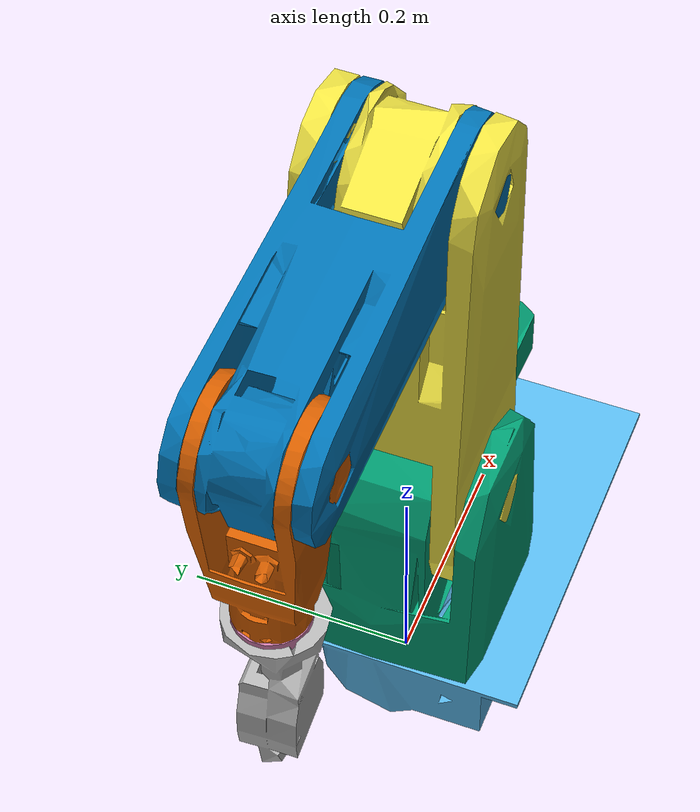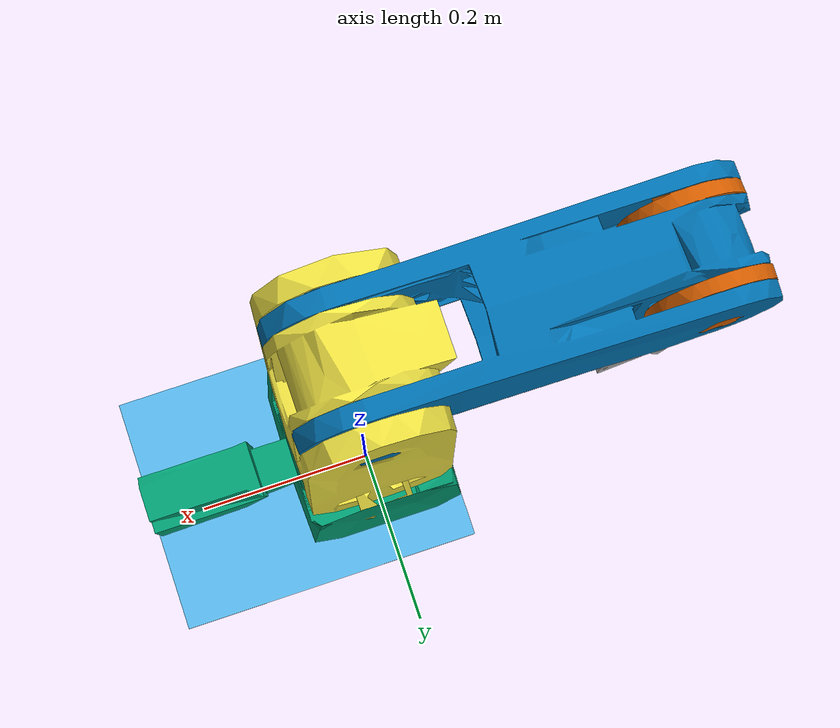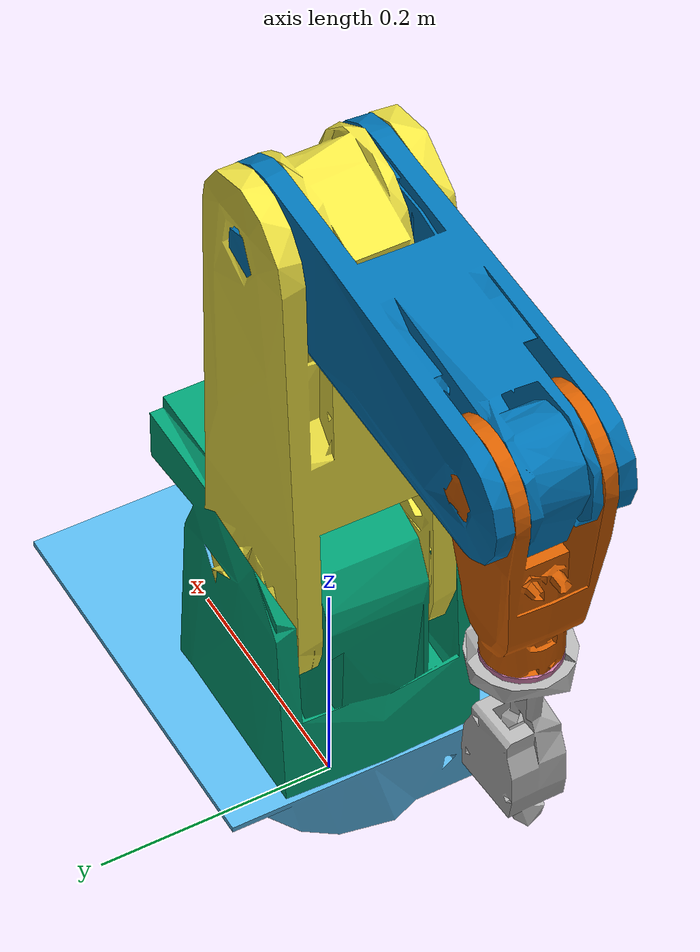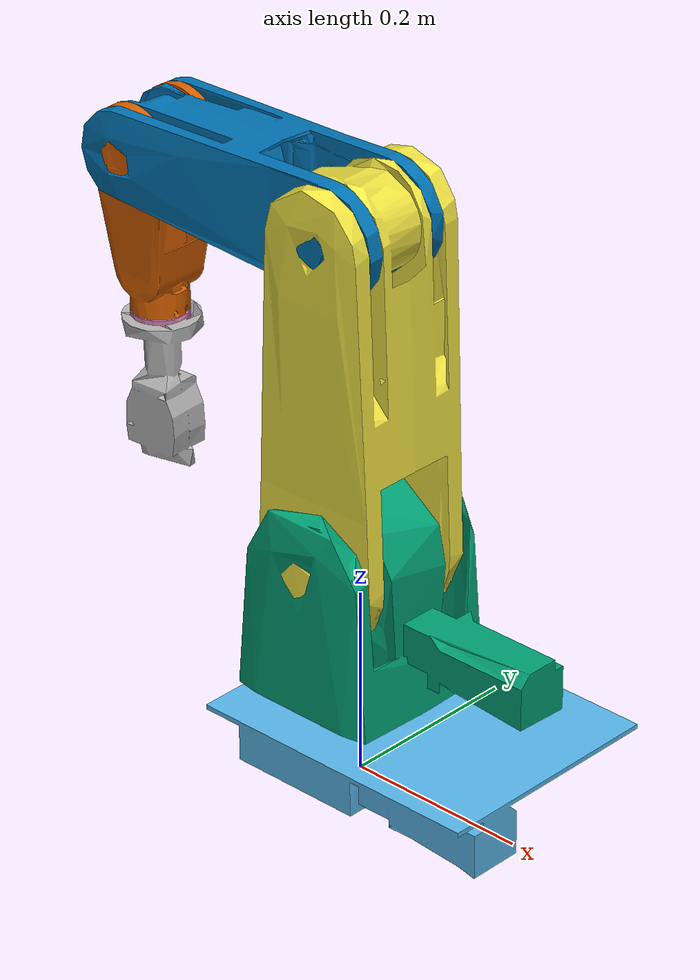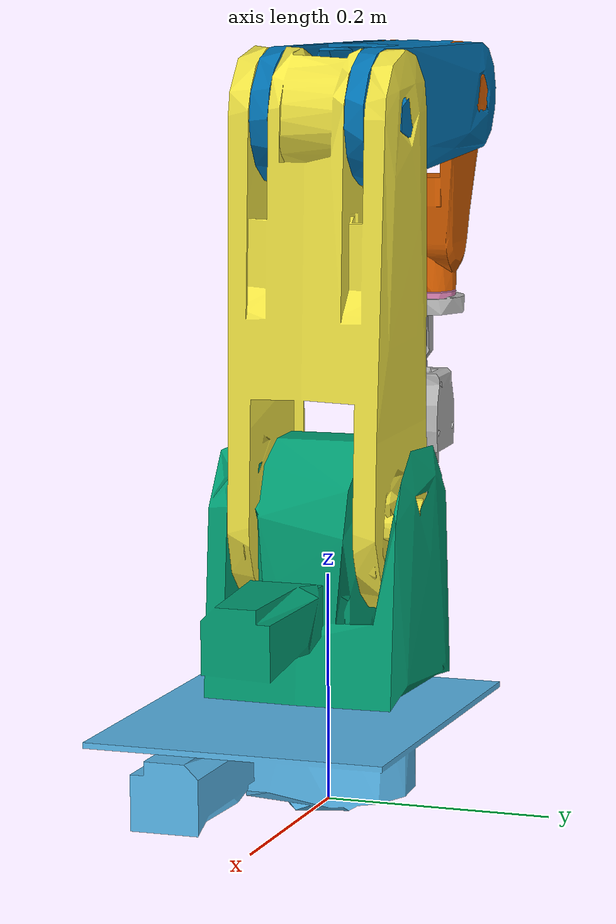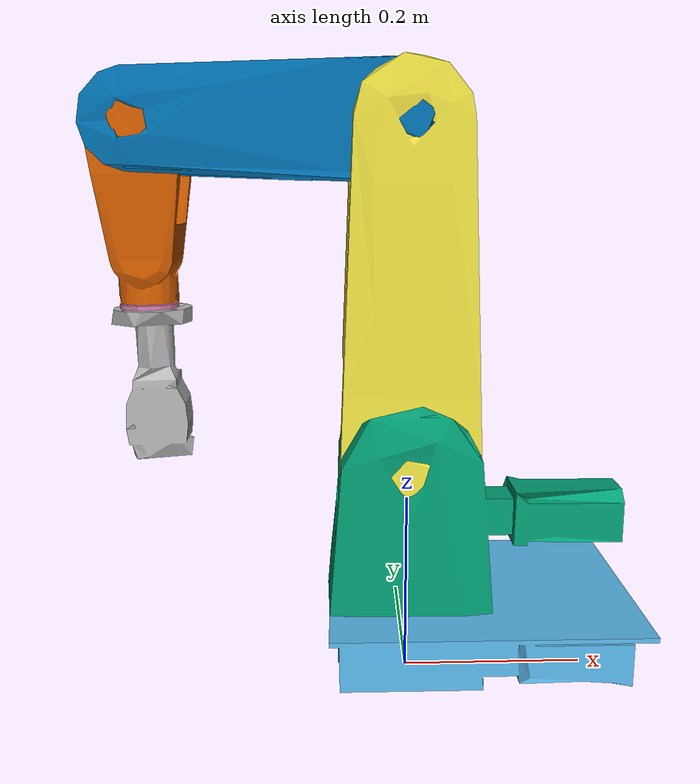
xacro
<?xml version="1.0"?>
<robot xmlns:xacro="http://www.ros.org/wiki/xacro" name="rldp5">

    <!-- Useful Variables (Properties) -->
    <xacro:property name="effort" value="10" />
    <xacro:property name="velocity" value="10" />

    <!-- Useful Macros -->
    <xacro:macro name="default_inertial" params="mass">
        <inertial>
            <mass value="${mass}" />
            <inertia ixx="1.0" ixy="0.0" ixz="0.0"
                     iyy="1.0" iyz="0.0"
                     izz="1.0" />
        </inertial>
    </xacro:macro>
    <xacro:macro name="default_transmission" params="number">
        <transmission name="transmission_${number}">
            <type>transmission_interface/SimpleTransmission</type>
            <joint name="joint_${number}">
                <hardwareInterface>hardware_interface/PositionJointInterface</hardwareInterface>
            </joint>
            <actuator name="motor_${number}">
                <hardwareInterface>hardware_interface/PositionJointInterface</hardwareInterface>
                <mechanicalReduction>1</mechanicalReduction>
            </actuator>
        </transmission>
    </xacro:macro>

    <!-- Links -->
    <link name="world"/>

    <link name="base_link">
        <inertial>
            <origin xyz="0.04223218345086115 -0.01938787744257538 0.057495548139883904" rpy="0 0 0"/>
            <mass value="2.4067491698035863"/>
            <inertia ixx="0.008466" iyy="0.018795" izz="0.024001" ixy="0.002277" iyz="-0.000333" ixz="-0.000705"/>
        </inertial>
        <visual>
            <origin rpy="0 0 0" xyz="0 0 0"/>
            <geometry>
                <mesh filename="package://rldp5_description/mesh/base_link.stl" scale="0.001 0.001 0.001"/>
            </geometry>
        </visual>
        <collision>
            <origin rpy="0 0 0" xyz="0 0 0"/>
            <geometry>
                <mesh filename="package://rldp5_description/mesh/base_link.stl" scale="0.001 0.001 0.001"/>
            </geometry>
        </collision>
    </link>

    <link name="link_1">
        <inertial>
            <origin xyz="0.02666189292548051 -4.87712308473133e-07 0.11114216106472456" rpy="0 0 0"/>
            <mass value="2.489938203553284"/>
            <inertia ixx="0.010589" iyy="0.021835" izz="0.017706" ixy="3e-06" iyz="-0.0" ixz="0.002056"/>
        </inertial>
        <visual>
            <origin rpy="0 0 0" xyz="0.0 0.0 -0.1022"/>
            <geometry>
                <mesh filename="package://rldp5_description/mesh/link_1.stl" scale="0.001 0.001 0.001"/>
            </geometry>
        </visual>
        <collision>
            <origin rpy="0 0 0" xyz="0.0 0.0 -0.1022"/>
            <geometry>
                <mesh filename="package://rldp5_description/mesh/link_1.stl" scale="0.001 0.001 0.001"/>
            </geometry>
        </collision>
    </link>

    <link name="link_2">
        <inertial>
            <origin xyz="-0.0025797033685453323 0.08740384931769365 0.23089426213956546" rpy="0 0 0"/>
            <mass value="1.7064644306239998"/>
            <inertia ixx="0.027922" iyy="0.027117" izz="0.005495" ixy="1.4e-05" iyz="-3.8e-05" ixz="0.000507"/>
        </inertial>
        <visual>
            <origin rpy="0 0 0" xyz="0.0 0.0875 -0.2472"/>
            <geometry>
                <mesh filename="package://rldp5_description/mesh/link_2.stl" scale="0.001 0.001 0.001"/>
            </geometry>
        </visual>
        <collision>
            <origin rpy="0 0 0" xyz="0.0 0.0875 -0.2472"/>
            <geometry>
                <mesh filename="package://rldp5_description/mesh/link_2.stl" scale="0.001 0.001 0.001"/>
            </geometry>
        </collision>
    </link>

    <link name="link_3">
        <inertial>
            <origin xyz="-0.17767994097579132 0.07055070946330594 -0.0021365928026594316" rpy="0 0 0"/>
            <mass value="0.8476040154017905"/>
            <inertia ixx="0.001758" iyy="0.008757" izz="0.008954" ixy="-4e-06" iyz="-3e-06" ixz="-0.000161"/>
        </inertial>
        <visual>
            <origin rpy="0 0 0" xyz="0.0 0.0706 -0.5972"/>
            <geometry>
                <mesh filename="package://rldp5_description/mesh/link_3.stl" scale="0.001 0.001 0.001"/>
            </geometry>
        </visual>
        <collision>
            <origin rpy="0 0 0" xyz="0.0 0.0706 -0.5972"/>
            <geometry>
                <mesh filename="package://rldp5_description/mesh/link_3.stl" scale="0.001 0.001 0.001"/>
            </geometry>
        </collision>
    </link>

    <link name="link_4">
        <inertial>
            <origin xyz="-0.00026026868676498616 0.05460448637419659 -0.095038323418843" rpy="0 0 0"/>
            <mass value="0.2564792674883184"/>
            <inertia ixx="0.001174" iyy="0.0011" izz="0.000275" ixy="-0.0" iyz="0.0" ixz="-1e-06"/>
        </inertial>
        <visual>
            <origin rpy="0 0 0" xyz="0.27 0.0546 -0.5972"/>
            <geometry>
                <mesh filename="package://rldp5_description/mesh/link_4.stl" scale="0.001 0.001 0.001"/>
            </geometry>
        </visual>
        <collision>
            <origin rpy="0 0 0" xyz="0.27 0.0546 -0.5972"/>
            <geometry>
                <mesh filename="package://rldp5_description/mesh/link_4.stl" scale="0.001 0.001 0.001"/>
            </geometry>
        </collision>
    </link>

    <link name="eef">
        <inertial>
            <origin xyz="-1.311241328183499e-06 2.1073781334110024e-05 -0.0010894994201211539" rpy="0 0 0"/>
            <mass value="0.0722497566624133"/>
            <inertia ixx="1.7e-05" iyy="1.7e-05" izz="3.3e-05" ixy="-0.0" iyz="-0.0" ixz="-0.0"/>
        </inertial>
        <visual>
            <origin rpy="0 0 0" xyz="0.27 -0.0 -0.4132"/>
            <geometry>
                <mesh filename="package://rldp5_description/mesh/eef.stl" scale="0.001 0.001 0.001"/>
            </geometry>
        </visual>
        <collision>
            <origin rpy="0 0 0" xyz="0.27 -0.0 -0.4132"/>
            <geometry>
                <mesh filename="package://rldp5_description/mesh/eef.stl" scale="0.001 0.001 0.001"/>
            </geometry>
        </collision>
    </link>

    <link name="tl_link">
        <visual>
        <origin xyz="0 0 0" rpy="0 3.13 0"/>
        <geometry>
        <mesh filename="package://rldp5_description/mesh/tool1.STL"/>
        </geometry>
        </visual>
        <collision>
        <origin xyz="0 0 0" rpy="0 3.13 0"/>
        <geometry>
        <mesh filename="package://rldp5_description/mesh/tool1.STL"/>
        </geometry>
        </collision>
    </link>

    <link name="tool_link"></link>

    <!-- Joints -->
    <joint name="virtual_joint" type="fixed">
        <parent link="world"/>
        <child link="base_link"/>
        <origin xyz="0 0 0" rpy="0 0 0"/>
    </joint>

    <joint name ="joint_1" type="revolute">
        <parent link="base_link"/>
        <child link = "link_1"/>
        <origin xyz="0.0 0.0 0.1022"/>
        <axis xyz="-0.0 0.0 -1.0"/>
        <limit upper="3.141593" lower="0.0" effort="${effort}" velocity="${velocity}"/>
    </joint>

    <joint name ="joint_2" type="revolute">
        <parent link="link_1"/>
        <child link = "link_2"/>
        <origin xyz="0.0 -0.0875 0.145"/>
        <axis xyz="0.0 1.0 0.0"/>
        <limit upper="0.872665" lower="-0.872665" effort="${effort}" velocity="${velocity}"/>
    </joint>

    <joint name ="joint_3" type="revolute">
        <parent link="link_2"/>
        <child link = "link_3"/>
        <origin xyz="0.0 0.0169 0.35"/>
        <axis xyz="0.0 1.0 0.0"/>
        <limit upper="3.752458" lower="-0.523599" effort="${effort}" velocity="${velocity}"/>
    </joint>

    <joint name ="joint_4" type="revolute">
        <parent link="link_3"/>
        <child link = "link_4"/>
        <origin xyz="-0.27 0.016 0.0"/>
        <axis xyz="0.0 1.0 0.0"/>
        <limit upper="3.752458" lower="-0.785398" effort="${effort}" velocity="${velocity}"/>
    </joint>

    <joint name ="joint_5" type="revolute">
        <parent link="link_4"/>
        <child link = "eef"/>
        <origin xyz="0.0 0.0546 -0.184"/>
        <axis xyz="0.0 0.0 -1.0"/>
        <limit upper="6.283185" lower="0.0" effort="${effort}" velocity="${velocity}"/>
    </joint>

    <joint name ="eef_to_tool" type="fixed">
        <parent link="eef"/>
        <child link = "tl_link"/>
        <origin xyz="0 0 0"/>
    </joint>

     <joint name ="tool_joint" type="fixed">
        <parent link="tl_link"/>
        <child link = "tool_link"/>
        <origin xyz="0 0 0"/>
    </joint>

    <!-- Transmissions-->
    <xacro:default_transmission number="1"/>
    <xacro:default_transmission number="2"/>
    <xacro:default_transmission number="3"/>
    <xacro:default_transmission number="4"/>
    <xacro:default_transmission number="5"/>

    <!-- gazebo ros_control plugin -->
    <gazebo>
        <plugin name="gazebo_ros_control" filename="libgazebo_ros_control.so">
            <robotNamespace></robotNamespace>
            <robotSimType>gazebo_ros_control/DefaultRobotHWSim</robotSimType>
            <legacyModeNS>true</legacyModeNS>
        </plugin>

    </gazebo>

</robot>
